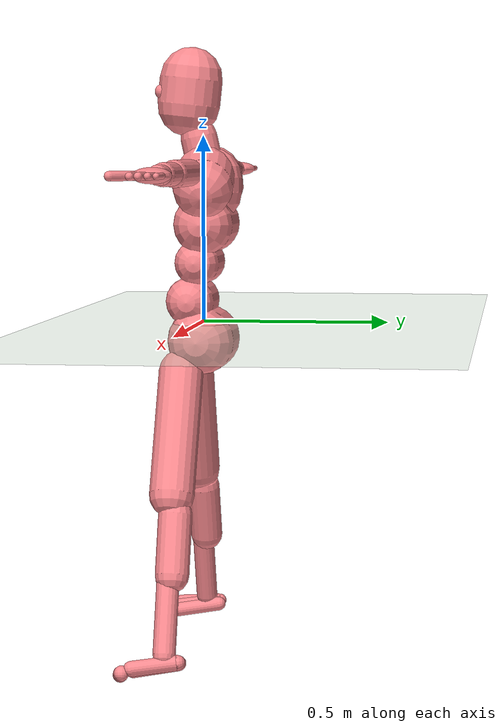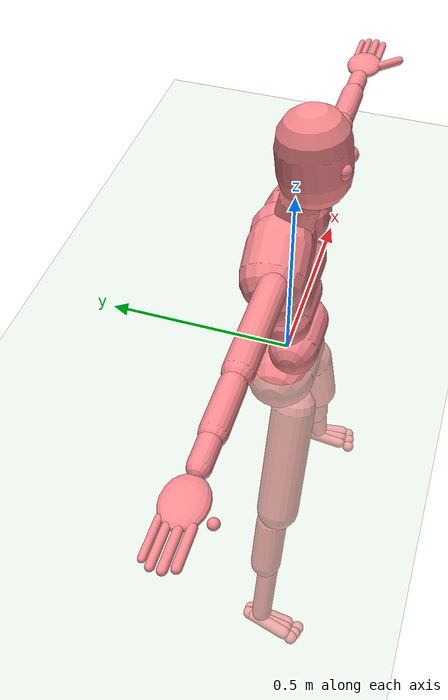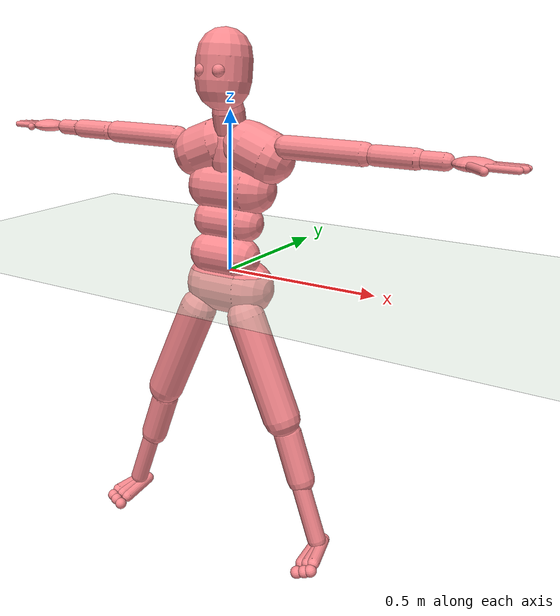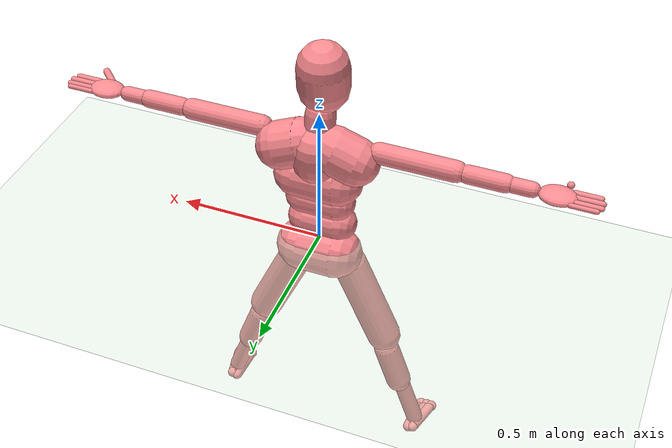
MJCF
<?xml version='1.0' encoding='utf-8'?>
<mujoco model="humanoid">
  <include file="./common/materials.xml" />
  <compiler angle="degree" inertiafromgeom="true" coordinate="local" />
  <statistic extent="3" center="0 0 1" />
  <size nuser_body="3" />
  <option timestep="0.00222222222"/>
  <default class="main">
    <joint limited="true" solimplimit="0 0.99 0.01"/>
    <geom contype="7" conaffinity="7" condim="1" margin="0.001" material="self" rgba="0.98 0.54 0.56 1" />
  </default>

  <worldbody>
    <geom condim="3" friction="1. .1 .1" material="grid_new" name="floor" pos="0.0 0.0 0.0" rgba=".8 .9 .8 1" size="117.025545004681 117.025545004681 0.23405109000936203" type="plane" />
    <light name="tracking_light" pos="0 0 7" dir="0 0 -1" mode="trackcom"/>
    <camera name="back" pos="0 3 2.4" xyaxes="-1 0 0 0 -1 2" mode="trackcom"/>
    <camera name="side" pos="-3 0 2.4" xyaxes="0 -1 0 1 0 2" mode="trackcom"/>
    <body name="root"  pos="0 0 0" euler="90 0 0">
      <joint armature="0.0" limited="false" name="root" pos="0.0 -0.0 0.0" stiffness="0" type="free" />

      <geom type="capsule" name="root_geom" size="0.09 0.06" pos="0 -0.05 0" quat="1 0 -1 0"/>
      <body name="lhipjoint" pos = "0 0 0">
        <geom type="capsule" name="lhipjoint" size="0.008 0.022" pos="0.051 -0.046 0.025" quat="0.5708 -0.566602 -0.594264 0" />
        <body name="lfemur" pos="0.102 -0.092 0.05" quat="1 0 0 0.17365">
          <joint name="lfemur_z" axis="0 0 1" range="-60 70" type="hinge"/>
          <joint name="lfemur_y" axis="0 1 0" range="-70 70" type="hinge"/>
          <joint name="lfemur_x" axis="1 0 0" range="-160 20" type="hinge"/>
          <geom type="capsule" name="lfemur" size="0.06 0.17" pos="-.01 -0.202473 0" quat="0.7 -0.7 -0.1228 -0.07"/>
          <body name="ltibia" pos="0 -0.404945 0">
            <joint name="ltibia_x" axis="1 0 0" range="1   170" type="hinge"/>
            <geom type="capsule" name="ltibia" size="0.03 0.1825614" pos="0 -0.202846 0" quat="0.7 -0.7 -0.1228 -0.1228"/>
            <geom type="capsule" name="lcalf" size="0.045 0.08" pos="0 -0.1 -.01" quat="0.7 -0.7 -0.1228 -0.1228"/>
            <body name="lfoot" pos="0 -0.405693 0" quat="0.707107 -0.707107 0 0">
              <joint name="lfoot_z" axis="0 0 1" range="-70 20" type="hinge"/>
              <joint name="lfoot_y" pos="0 0 0" axis="0 -1 0" range="-45 45" />
              <joint name="lfoot_x" axis="1 0 0" range="-45    90" type="hinge"/>
              <geom type="capsule" name="lfoot0" size="0.02 0.06" pos="-0.02 -0.023 -0.01" euler="100 -2 0"/>
              <geom type="capsule" name="lfoot1" size="0.02 0.06" pos="0 -0.023 -0.01" euler="100 0 0"/>
              <geom type="capsule" name="lfoot2" size="0.02 0.06" pos=".01 -0.023 -0.01" euler="100 10 0"/>
              <body name="ltoes" pos="0 -0.106372 -0.0227756">
                <geom name="ltoes0" type="sphere" size="0.02" pos="-.025 -0.01 -.01"/>
                <geom name="ltoes1" type="sphere" size="0.02" pos="0 -0.005 -.01"/>
                <geom name="ltoes2" type="sphere" size="0.02" pos=".02 .001 -.01"/>
              </body>
            </body>
          </body>
        </body>
      </body>
      <body name="rhipjoint" pos="0 0 0">
        <geom type="capsule" name="rhipjoint" size="0.008 0.022" pos="-0.051 -0.046 0.025" quat="0.574856 -0.547594 0.608014 0"/>
        <body name="rfemur" pos="-0.102 -0.092 0.05" quat="1 0 0 -0.17365">
          <joint name="rfemur_z" axis="0 0 1" range="-70 60" type="hinge"/>
          <joint name="rfemur_y" axis="0 1 0" range="-70 70" type="hinge"/>
          <joint name="rfemur_x" axis="1 0 0" range="-160 20" type="hinge"/>
          <geom type="capsule" name="rfemur" size="0.06 0.17" pos=".01 -0.202473 0" quat="0.7 -0.7 0.1228 0.07"/>
          <body name="rtibia" pos="0 -0.404945 0">
            <joint name="rtibia_x" axis="1 0 0" range="1   170" type="hinge"/>
            <geom type="capsule" name="rtibia" size="0.03 0.1825614" pos="0 -0.202846 0" quat="0.7 -0.7 0.1228 0.1228"/>
            <geom type="capsule" name="rcalf" size="0.045 0.08" pos="0 -0.1 -.01" quat="0.7 -0.7 -0.1228 -0.1228"/>
            <body name="rfoot" pos="0 -0.405693 0" quat="0.707107 -0.707107 0 0">
              <joint name="rfoot_z" axis="0 0 1" range="-20 70" type="hinge"/>
              <joint name="rfoot_y" pos="0 0 0" axis="0 -1 0" range="-45 45" />
              <joint name="rfoot_x" axis="1 0 0" range="-45    90" type="hinge"/>
              <geom type="capsule" name="rfoot0" size="0.02 0.06" pos="0.02 -0.023 -0.01" euler="100 2 0"/>
              <geom type="capsule" name="rfoot1" size="0.02 0.06" pos="0 -0.023 -0.01" euler="100 0 0"/>
              <geom type="capsule" name="rfoot2" size="0.02 0.06" pos="-.01 -0.023 -0.01" euler="100 -10 0"/>
              <body name="rtoes" pos="0 -0.106372 -0.0227756">
                <geom  name="rtoes0" type="sphere" size="0.02" pos=".025 -0.01 -.01"/>
                <geom  name="rtoes1" type="sphere" size="0.02" pos="0 -0.005 -.01"/>
                <geom  name="rtoes2" type="sphere" size="0.02" pos="-.02 .001 -.01"/>
              </body>
            </body>
          </body>
        </body>
      </body>
      <body name="lowerback">
        <geom type="capsule" name="lowerback" size="0.065 0.055" pos="0 0.056 .03" quat="1 0 1 0"/>
        <body name="upperback" pos="0 0.1 -0.01">
          <joint name="upperback_z" axis="0 0 1" range="-30 30" type="hinge"/>
          <joint name="upperback_y" axis="0 1 0" range="-30 30" type="hinge"/>
          <joint name="upperback_x" axis="1 0 0" range="-20 45" type="hinge"/>
          <geom type="capsule" name="upperback" size="0.06 0.06" pos="0 0.06 0.02" quat="1 0 1 0"/>
          <body name="thorax" pos="0.000512528 0.11356 0.000936821">
            <geom type="capsule" name="thorax" size="0.08 0.07" pos="0 0.05 0" quat="1 0 1 0"/>
            <body name="lowerneck" pos="0 0.113945 0.00468037">
              <joint name="lowerneck_z" axis="0 0 1" range="-30 30" type="hinge"/>
              <joint name="lowerneck_y" axis="0 1 0" range="-30 30" type="hinge"/>
              <joint name="lowerneck_x" axis="1 0 0" range="-20 45" type="hinge"/>
              <geom type="capsule" name="lowerneck" size="0.08 0.02" pos="0 0.04 -.02" quat="1 1 0 0"/>
              <body name="upperneck" pos="0 0.09 0.01">
                <geom type="capsule" name="upperneck" size="0.05 0.03" pos="0 0.05 0" quat=".8 1 0 0"/>
                <body name="head" pos="0 0.09 0">
                  <camera name="egocentric" pos="0 0 0" xyaxes="-1 0 0 0 1 0" fovy="80"/>
                  <geom type="capsule" name="head" size="0.085 0.035" pos="0 0.11 0.03" quat="1 .9 0 0"/>
                  <geom  name="leye" type="sphere" size="0.02" pos=".03 0.11 0.1"/>
                  <geom  name="reye" type="sphere" size="0.02" pos="-.03 0.11 0.1"/>
                </body>
              </body>
            </body>
            <body name="lclavicle" pos="0 0.113945 0.00468037">
              <joint name="lclavicle_z" axis="0 0 1" range="0 20" type="hinge"/>
              <joint name="lclavicle_y" axis="0 1 0" range="-20 10" type="hinge"/>
              <geom type="capsule" name="lclavicle" size="0.08 0.04" pos="0.09 0.05 -.01" quat="1 0 -1 -.4"/>
              <body name="lhumerus" pos="0.183 0.076 0.01" quat="0.18 0.68 -0.68 0.18">
                <joint name="lhumerus_z" axis="0 0 1" range="-90 90" type="hinge"/>
                <joint name="lhumerus_y" axis="0 1 0" range="-90 90" type="hinge"/>
                <joint name="lhumerus_x" axis="1 0 0" range="-60 90" type="hinge"/>
                <geom type="capsule" name="lhumerus" size="0.035 0.124" pos="0 -0.138 0" quat="0.612 -0.612 0.35 0.35"/>
                <body name="lradius" pos="0 -0.277 0">
                  <joint name="lradius_x" axis="1 0 0" range="-10 170" type="hinge"/>
                  <geom type="capsule" name="lradius" size="0.03 0.06" pos="0 -0.08 0" quat="0.612 -0.612 0.35 0.35"/>
                  <body name="lwrist" pos="0 -0.17 0" quat="-0.5 0 0.866 0">
                    <geom type="capsule" name="lwrist" size="0.025 0.03" pos="0 -0.02 0" quat="0 0 -1 -1"/>
                    <body name="lhand" pos="0 -0.08 0">
                      <geom name="lhand" type="ellipsoid" size=".048 0.02 0.06" pos="0 -0.047 0" quat="0 0 -1 -1"/>
                      <body name="lfingers" pos="0 -0.08 0">
                        <geom type="capsule" name="lfinger0" size="0.01 0.04" pos="-.03 -0.05 0" quat="1 -1 0 0" />
                        <geom type="capsule" name="lfinger1" size="0.01 0.04" pos="-.008 -0.06 0" quat="1 -1 0 0" />
                        <geom type="capsule" name="lfinger2" size="0.009 0.04" pos=".014 -0.06 0" quat="1 -1 0 0" />
                        <geom type="capsule" name="lfinger3" size="0.008 0.04" pos=".032 -0.05 0" quat="1 -1 0 0" />
                      </body>
                      <body name="lthumb" pos="-.02 -.03 0" quat="0.92388 0 0 -0.382683">
                        <geom type="capsule" name="lthumb" size="0.012 0.04" pos="0 -0.06 0" quat="0 0 -1 -1"/>
                      </body>
                    </body>
                  </body>
                </body>
              </body>
            </body>
            <body name="rclavicle" pos="0 0.113945 0.00468037">
              <joint name="rclavicle_z" axis="0 0 1" range="-20 0" type="hinge"/>
              <joint name="rclavicle_y" axis="0 1 0" range="-10 20" type="hinge"/>
              <geom type="capsule" name="rclavicle" size="0.08 0.04" pos="-.09 0.05 -.01" quat="1 0 -1 .4"/>
              <body name="rhumerus" pos="-0.183 0.076 0.01" quat="0.18 0.68 0.68 -0.18">
                <joint name="rhumerus_z" axis="0 0 1" range="-90 90" type="hinge"/>
                <joint name="rhumerus_y" axis="0 1 0" range="-90 90" type="hinge"/>
                <joint name="rhumerus_x" axis="1 0 0" range="-60 90" type="hinge"/>
                <geom type="capsule" name="rhumerus" size="0.035 0.124" pos="0 -0.138 0" quat="0.61 -0.61 -0.35 -0.35"/>
                <body name="rradius" pos="0 -0.277 0">
                  <joint name="rradius_x" axis="1 0 0" range="-10 170" type="hinge"/>
                  <geom type="capsule" name="rradius" size="0.03 0.06" pos="0 -0.08 0" quat="0.612 -0.612 -0.35 -0.35"/>
                  <body name="rwrist" pos="0 -0.17 0" quat="-0.5 0 -0.866 0">
                    <geom type="capsule" name="rwrist" size="0.025 0.03" pos="0 -0.02 0" quat="0 0 1 1"/>
                    <body name="rhand" pos="0 -0.08 0">
                      <geom name="rhand" type="ellipsoid" size=".048 0.02 .06" pos="0 -0.047 0" quat="0 0 1 1"/>
                      <body name="rfingers" pos="0 -0.08 0">
                        <geom type="capsule" name="rfinger0" size="0.01 0.04" pos=".03 -0.05 0" quat="1 -1  0 0" />
                        <geom type="capsule" name="rfinger1" size="0.01 0.04" pos=".008 -0.06 0" quat="1 -1  0 0" />
                        <geom type="capsule" name="rfinger2" size="0.009 0.04" pos="-.014 -0.06 0" quat="1 -1  0 0" />
                        <geom type="capsule" name="rfinger3" size="0.008 0.04" pos="-.032 -0.05 0" quat="1 -1  0 0" />
                      </body>
                      <body name="rthumb" pos=".02 -.03 0" quat="0.92388 0 0 0.382683">
                        <geom name="rthumb" size="0.012 0.04" pos="0 -0.06 0" quat="0 0 1 1"/>
                      </body>
                    </body>
                  </body>
                </body>
              </body>
            </body>
          </body>
        </body>
      </body>
    </body>
  </worldbody>

  <contact>
    <exclude body1="lclavicle" body2="rclavicle"/>
    <exclude body1="lowerneck" body2="lclavicle"/>
    <exclude body1="lowerneck" body2="rclavicle"/>
    <exclude body1="upperneck" body2="lclavicle"/>
    <exclude body1="upperneck" body2="rclavicle"/>
  </contact>

  <actuator>
    <general name="lfemur_z" joint="lfemur_z" />
    <general name="lfemur_y" joint="lfemur_y" />
    <general name="lfemur_x" joint="lfemur_x" />
    <general name="ltibia_x" joint="ltibia_x" />
    <general name="lfoot_z" joint="lfoot_z" />
    <general name="lfoot_y" joint="lfoot_y" />
    <general name="lfoot_x" joint="lfoot_x" />
    <general name="rfemur_z" joint="rfemur_z" />
    <general name="rfemur_y" joint="rfemur_y" />
    <general name="rfemur_x" joint="rfemur_x" />
    <general name="rtibia_x" joint="rtibia_x" />
    <general name="rfoot_z" joint="rfoot_z" />
    <general name="rfoot_y" joint="rfoot_y" />
    <general name="rfoot_x" joint="rfoot_x" />
    <general name="upperback_z" joint="upperback_z" />
    <general name="upperback_y" joint="upperback_y" />
    <general name="upperback_x" joint="upperback_x" />
    <general name="lowerneck_z" joint="lowerneck_z" />
    <general name="lowerneck_y" joint="lowerneck_y" />
    <general name="lowerneck_x" joint="lowerneck_x" />
    <general name="lclavicle_z" joint="lclavicle_z" />
    <general name="lclavicle_y" joint="lclavicle_y" />
    <general name="lhumerus_z" joint="lhumerus_z" />
    <general name="lhumerus_y" joint="lhumerus_y" />
    <general name="lhumerus_x" joint="lhumerus_x" />
    <general name="lradius_x" joint="lradius_x" />
    <general name="rclavicle_z" joint="rclavicle_z" />
    <general name="rclavicle_y" joint="rclavicle_y" />
    <general name="rhumerus_z" joint="rhumerus_z" />
    <general name="rhumerus_y" joint="rhumerus_y" />
    <general name="rhumerus_x" joint="rhumerus_x" />
    <general name="rradius_x" joint="rradius_x" />
  </actuator>
</mujoco>

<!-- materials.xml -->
<!--
Common textures, colors and materials to be used throughout this suite. Some
materials such as xxx_highlight are activated on occurence of certain events,
for example receiving a positive reward.
-->
<mujoco>
  <asset>
    <texture name="grid" type="2d" builtin="checker" rgb1=".1 .2 .3" rgb2=".2 .3 .4" width="300" height="300" mark="edge" markrgb=".2 .3 .4"/>
    <material name="grid" texture="grid" texrepeat="1 1" texuniform="true" reflectance=".2"/>
    <texture builtin="checker" height="100" name="texplane" rgb1="0 0 0" rgb2=".8 .8 .8" type="2d" width="100"/>
    <texture name="grass" file="./common/grass.png" type="2d"/>

    <texture name="grid_new" type="2d" builtin="checker" rgb1=".1 .3 .2" rgb2=".2 .4 .3" width="1000" height="1000" mark="none" markrgb=".8 .6 .4"/>
    <material name="grid_new" texture="grid_new" texrepeat="0.2 0.2" texuniform="true" reflectance=".2"/>
    <material name="MatPlane" reflectance="0.5" shininess="1" specular="1" texrepeat="60 60" texture="texplane"/>
    <material name="GrassPlane" reflectance="0.0" shininess="1" specular="1" texrepeat="400 400" texture="grass"/>
    <material name="self" rgba=".7 .5 .3 1"/>
    <material name="self_default" rgba=".7 .5 .3 1"/>
    <material name="self_highlight" rgba="0 .5 .3 1"/>
    <material name="effector" rgba=".7 .4 .2 1"/>
    <material name="effector_default" rgba=".7 .4 .2 1"/>
    <material name="effector_highlight" rgba="0 .5 .3 1"/>
    <material name="decoration" rgba=".3 .5 .7 1"/>
    <material name="eye" rgba="0 .2 1 1"/>
    <material name="target" rgba=".6 .3 .3 1"/>
    <material name="target_default" rgba=".6 .3 .3 1"/>
    <material name="target_highlight" rgba=".6 .3 .3 .4"/>
    <material name="expert" rgba=".6 .3 .3 .4"/>
  </asset>
</mujoco>
